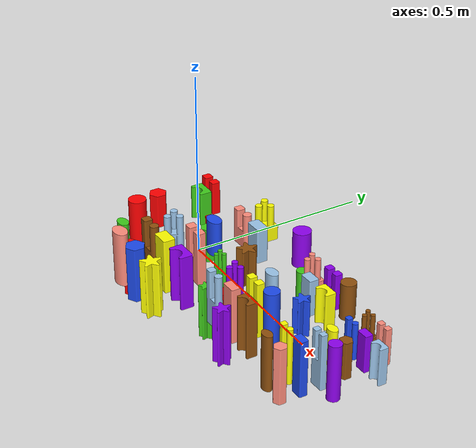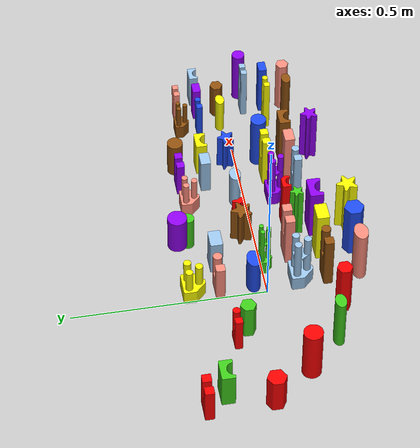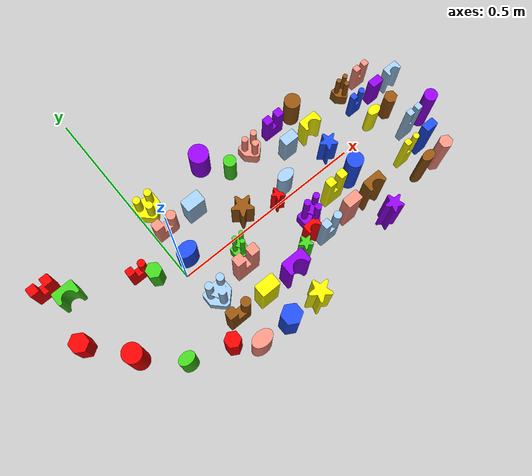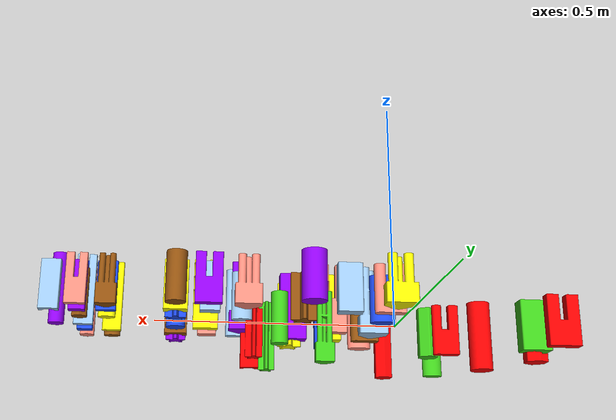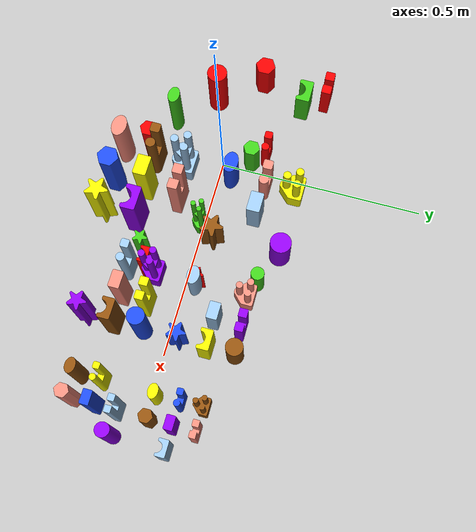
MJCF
<?xml version='1.0' encoding='utf-8'?>
<mujoco model="peg">
  <asset>
    <mesh name="obj1" file="meshes/peg/obj1.obj" scale="0.001 0.001 0.001" />
    <mesh name="obj2" file="meshes/peg/obj2.obj" scale="0.001 0.001 0.001" />
    <mesh name="obj3" file="meshes/peg/obj3.obj" scale="0.001 0.001 0.001" />
    <mesh name="obj4" file="meshes/peg/obj4.obj" scale="0.001 0.001 0.001" />
    <mesh name="obj5" file="meshes/peg/obj5.obj" scale="0.001 0.001 0.001" />
    <mesh name="obj6" file="meshes/peg/obj6.obj" scale="0.001 0.001 0.001" />
    <mesh name="obj7" file="meshes/peg/obj7.obj" scale="0.001 0.001 0.001" />
    <mesh name="obj8" file="meshes/peg/obj8.obj" scale="0.001 0.001 0.001" />
    <material name="mat1" rgba="1 0 0 1" />
    <material name="mat2" rgba="1 1 0 1" />
    <material name="mat3" rgba="0.60392 0.76471 0.9098 1" />
    <material name="mat4" rgba="0.56078 0.31373 0.0549 1" />
    <material name="mat5" rgba="0.24706 0.79608 0.10588 1" />
    <material name="mat6" rgba="1 0.54902 0.48235 1" />
    <material name="mat7" rgba="0.55686 0 0.92941 1" />
    <material name="mat8" rgba="0.11373 0.2902 0.92157 1" />
  </asset>
  <worldbody>
    <body>
      <body name="object">
        <geom name="obj1" mesh="obj1" type="mesh" contype="0" conaffinity="0" group="1" material="mat1" />
        <geom name="obj2" mesh="obj2" type="mesh" contype="0" conaffinity="0" group="1" material="mat2" />
        <geom name="obj3" mesh="obj3" type="mesh" contype="0" conaffinity="0" group="1" material="mat3" />
        <geom name="obj4" mesh="obj4" type="mesh" contype="0" conaffinity="0" group="1" material="mat4" />
        <geom name="obj5" mesh="obj5" type="mesh" contype="0" conaffinity="0" group="1" material="mat5" />
        <geom name="obj6" mesh="obj6" type="mesh" contype="0" conaffinity="0" group="1" material="mat6" />
        <geom name="obj7" mesh="obj7" type="mesh" contype="0" conaffinity="0" group="1" material="mat7" />
        <geom name="obj8" mesh="obj8" type="mesh" contype="0" conaffinity="0" group="1" material="mat8" />
        <geom name="obj1" mesh="obj1" type="mesh" density="500" friction="1 0.005 0.0001" group="0" />
        <geom name="obj2" mesh="obj2" type="mesh" density="500" friction="1 0.005 0.0001" group="0" />
        <geom name="obj3" mesh="obj3" type="mesh" density="500" friction="1 0.005 0.0001" group="0" />
        <geom name="obj4" mesh="obj4" type="mesh" density="500" friction="1 0.005 0.0001" group="0" />
        <geom name="obj5" mesh="obj5" type="mesh" density="500" friction="1 0.005 0.0001" group="0" />
        <geom name="obj6" mesh="obj6" type="mesh" density="500" friction="1 0.005 0.0001" group="0" />
        <geom name="obj7" mesh="obj7" type="mesh" density="500" friction="1 0.005 0.0001" group="0" />
        <geom name="obj8" mesh="obj8" type="mesh" density="500" friction="1 0.005 0.0001" group="0" />
        <site name="bottom_site" pos="0 0 -0.025" size="0.005" rgba="0 0 0 0" />
        <site name="top_site" pos="0 0 0.025" size="0.005" rgba="0 0 0 0" />
        <site name="horizontal_radius_site" pos="0.03 0.03 0" size="0.005" rgba="0 0 0 0" />
      </body>
    </body>
  </worldbody>
</mujoco>
